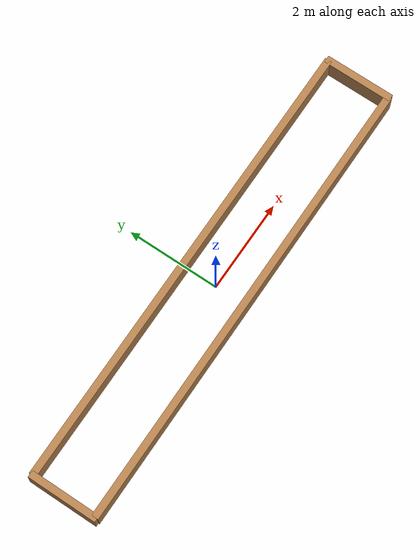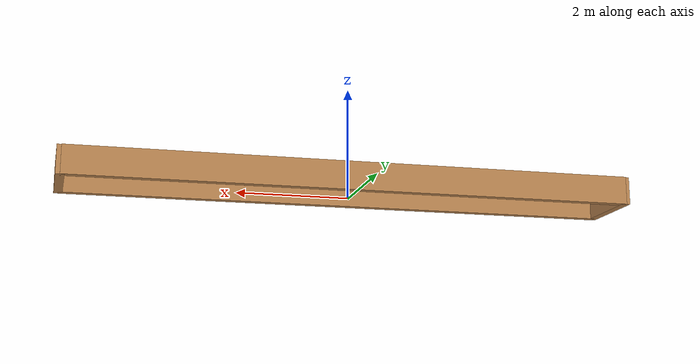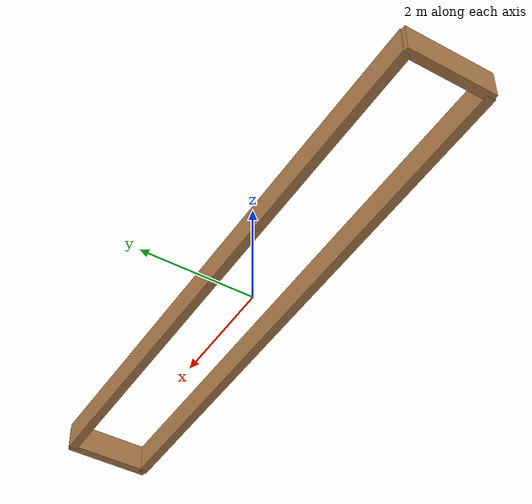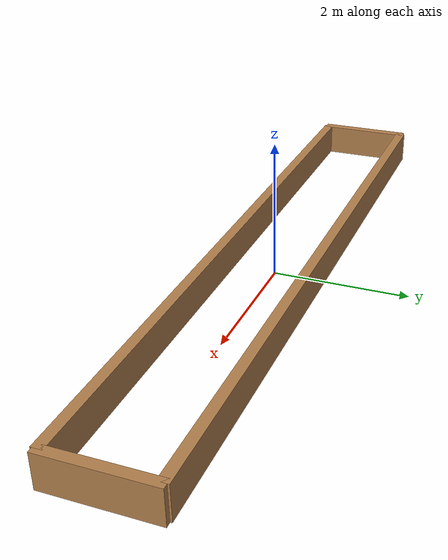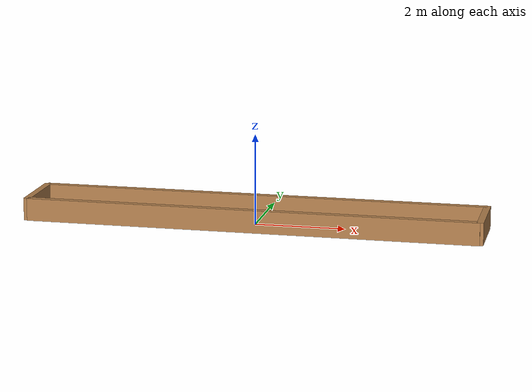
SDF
<?xml version='1.0'?>
<sdf version='1.6'>
  <model name='turtlebot3_rectangle'>
    <pose frame=''>0 0 0 0 0 0</pose>
    <link name='Long_Wall_1'>
      <collision name='Long_Wall_1_Collision'>
        <geometry>
          <box>
            <size>10 0.15 0.5</size>
          </box>
        </geometry>
        <pose frame=''>0 0 0.25 0 -0 0</pose>
      </collision>
      <visual name='Long_Wall_1_Visual'>
        <pose frame=''>0 0 0.25 0 -0 0</pose>
        <geometry>
          <box>
            <size>10 0.15 0.5</size>
          </box>
        </geometry>
        <material>
          <script>
            <uri>file://media/materials/scripts/gazebo.material</uri>
            <name>Gazebo/Wood</name>
          </script>
          <ambient>1 1 1 1</ambient>
        </material>
      </visual>
      <pose frame=''>0 0.7 0 0 -0 0</pose>
    </link>
    <link name='Short_Wall_1'>
      <collision name='Short_Wall_1_Collision'>
        <geometry>
          <box>
            <size>1.5 0.15 0.5</size>
          </box>
        </geometry>
        <pose frame=''>0 0 0.25 0 -0 0</pose>
      </collision>
      <visual name='Short_Wall_1_Visual'>
        <pose frame=''>0 0 0.25 0 -0 0</pose>
        <geometry>
          <box>
            <size>1.5 0.15 0.5</size>
          </box>
        </geometry>
        <material>
          <script>
            <uri>file://media/materials/scripts/gazebo.material</uri>
            <name>Gazebo/Wood</name>
          </script>
          <ambient>1 1 1 1</ambient>
        </material>
      </visual>
      <pose frame=''>-5 0 0 0 0 1.5708</pose>
    </link>
    <link name='Long_Wall_2'>
      <collision name='Long_Wall_2_Collision'>
        <geometry>
          <box>
            <size>10 0.15 0.5</size>
          </box>
        </geometry>
        <pose frame=''>0 0 0.25 0 0 0</pose>
      </collision>
      <visual name='Long_Wall_2_Visual'>
        <pose frame=''>0 0 0.25 0 0 0</pose>
        <geometry>
          <box>
            <size>10 0.15 0.5</size>
          </box>
        </geometry>
        <material>
          <script>
            <uri>file://media/materials/scripts/gazebo.material</uri>
            <name>Gazebo/Wood</name>
          </script>
          <ambient>1 1 1 1</ambient>
        </material>
      </visual>
      <pose frame=''>0 -0.7 0 0 0 3.14159</pose>
    </link>
    <link name='Short_Wall_2'>
      <collision name='Short_Wall_2_Collision'>
        <geometry>
          <box>
            <size>1.5 0.15 0.5</size>
          </box>
        </geometry>
        <pose frame=''>0 0 0.25 0 -0 0</pose>
      </collision>
      <visual name='Short_Wall_2_Visual'>
        <pose frame=''>0 0 0.25 0 -0 0</pose>
        <geometry>
          <box>
            <size>1.5 0.15 0.5</size>
          </box>
        </geometry>
        <material>
          <script>
            <uri>file://media/materials/scripts/gazebo.material</uri>
            <name>Gazebo/Wood</name>
          </script>
          <ambient>1 1 1 1</ambient>
        </material>
      </visual>
      <pose frame=''>5 0 0 0 0 1.5708</pose>
    </link>
    <static>1</static>
  </model>
</sdf>
